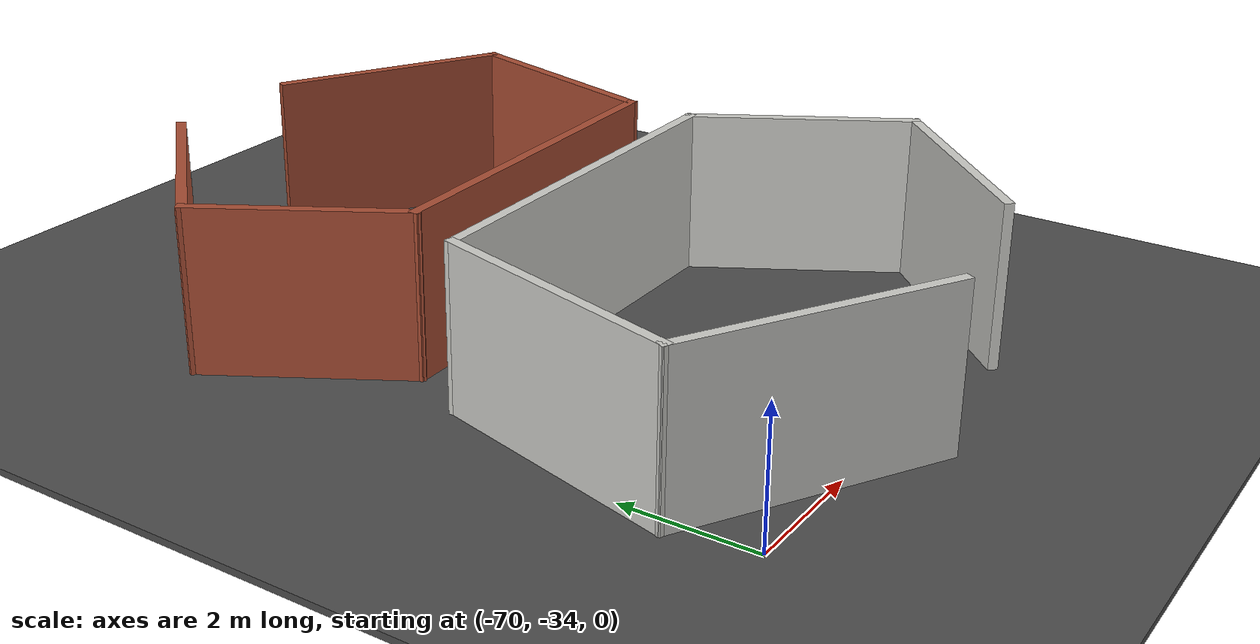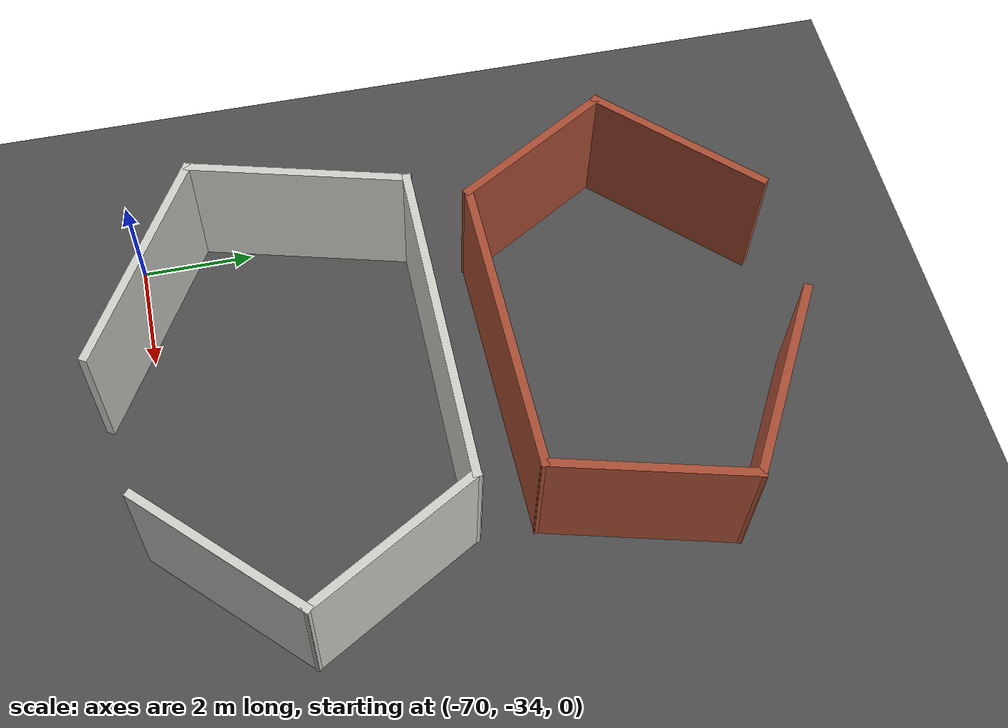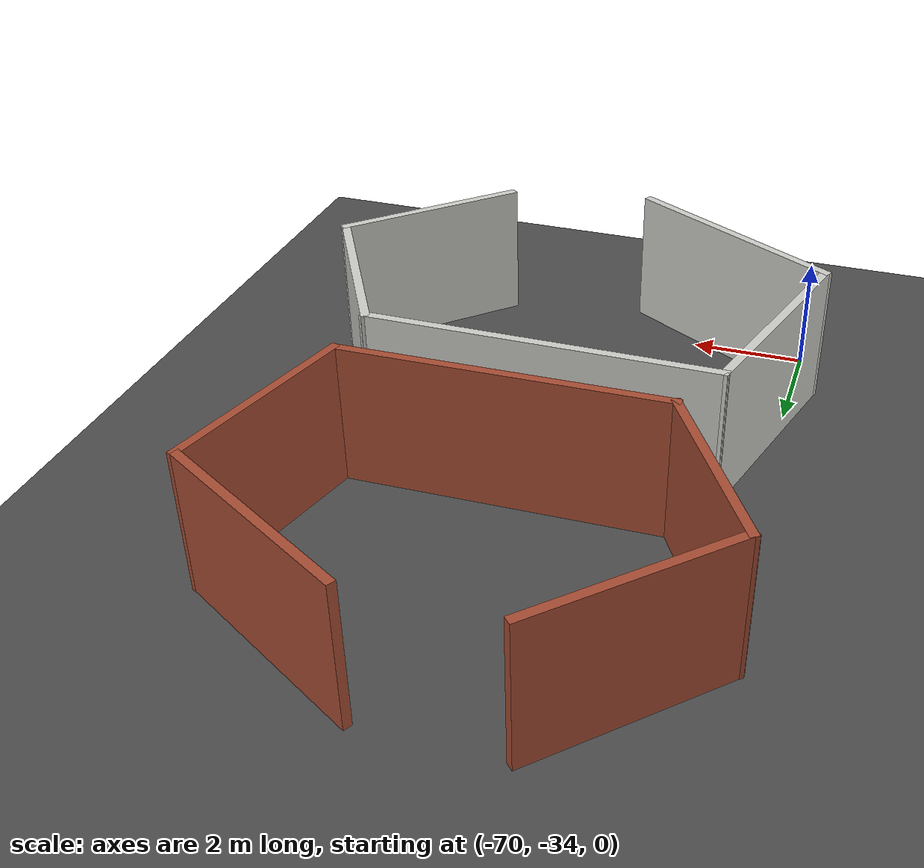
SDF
<sdf version="1.6">
 <world name="default">
  <model name="ground_plane">
   <static>1</static>
   <link name="link">
    <collision name="collision">
     <geometry><plane><normal>0 0 1</normal><size>200 200</size></plane></geometry>
     <surface><friction><ode><mu>100</mu><mu2>50</mu2></ode></friction></surface>
    </collision>
    <visual name="visual">
     <cast_shadows>0</cast_shadows>
     <geometry><plane><normal>0 0 1</normal><size>200 200</size></plane></geometry>
     <material>
      <script><uri>file://media/materials/scripts/gazebo.material</uri><name>Gazebo/Grey</name></script>
     </material>
    </visual>
   </link>
  </model>
  <model name="asphalt_plane">
   <static>1</static>
   <link name="link">
    <collision name="collision"><geometry><box><size>200 200 0.1</size></box></geometry></collision>
    <visual name="visual">
     <cast_shadows>0</cast_shadows>
     <geometry><box><size>200 200 0.1</size></box></geometry>
     <material>
      <script>
       <uri>model://asphalt_plane/materials/scripts</uri>
       <uri>model://asphalt_plane/materials/textures</uri>
       <name>vrc/asphalt</name>
      </script>
     </material>
    </visual>
   </link>
  </model>
  <model name="concrete_room">
   <pose>-66.0722 -31.9823 0 0 -0 0</pose>
   <link name="Wall_54">
    <collision name="Wall_54_Collision">
     <geometry><box><size>4.25 0.15 2.5</size></box></geometry>
     <pose>0 0 1.25 0 -0 0</pose>
    </collision>
    <visual name="Wall_54_Visual">
     <pose>0 0 1.25 0 -0 0</pose>
     <geometry><box><size>4.25 0.15 2.5</size></box></geometry>
     <material>
      <script><uri>file://media/materials/scripts/gazebo.material</uri><name>Gazebo/CeilingTiled</name></script>
      <ambient>1 1 1 1</ambient>
     </material>
     <meta><layer>0</layer></meta>
    </visual>
    <pose>-2.48718 -1.85941 0 0 -0 2.61799</pose>
   </link>
   <link name="Wall_55">
    <collision name="Wall_55_Collision">
     <geometry><box><size>4 0.15 2.5</size></box></geometry>
     <pose>0 0 1.25 0 -0 0</pose>
    </collision>
    <visual name="Wall_55_Visual">
     <pose>0 0 1.25 0 -0 0</pose>
     <geometry><box><size>4 0.15 2.5</size></box></geometry>
     <material>
      <script><uri>file://media/materials/scripts/gazebo.material</uri><name>Gazebo/CeilingTiled</name></script>
      <ambient>1 1 1 1</ambient>
     </material>
     <meta><layer>0</layer></meta>
    </visual>
    <pose>-3.76431 1.025 0 0 -0 1.309</pose>
   </link>
   <link name="Wall_56">
    <collision name="Wall_56_Collision">
     <geometry><box><size>6 0.15 2.5</size></box></geometry>
     <pose>0 0 1.25 0 -0 0</pose>
    </collision>
    <visual name="Wall_56_Visual">
     <pose>0 0 1.25 0 -0 0</pose>
     <geometry><box><size>6 0.15 2.5</size></box></geometry>
     <material>
      <script><uri>file://media/materials/scripts/gazebo.material</uri><name>Gazebo/CeilingTiled</name></script>
      <ambient>1 1 1 1</ambient>
     </material>
     <meta><layer>0</layer></meta>
    </visual>
    <pose>-0.34108 2.88441 0 0 -0 0</pose>
   </link>
   <link name="Wall_57">
    <collision name="Wall_57_Collision">
     <geometry><box><size>3.5 0.15 2.5</size></box></geometry>
     <pose>0 0 1.25 0 -0 0</pose>
    </collision>
    <visual name="Wall_57_Visual">
     <pose>0 0 1.25 0 -0 0</pose>
     <geometry><box><size>3.5 0.15 2.5</size></box></geometry>
     <material>
      <script><uri>file://media/materials/scripts/gazebo.material</uri><name>Gazebo/CeilingTiled</name></script>
      <ambient>1 1 1 1</ambient>
     </material>
     <meta><layer>0</layer></meta>
    </visual>
    <pose>3.42142 1.43382 0 0 0 -1.0472</pose>
   </link>
   <link name="Wall_58">
    <collision name="Wall_58_Collision">
     <geometry><box><size>3.5 0.15 2.5</size></box></geometry>
     <pose>0 0 1.25 0 -0 0</pose>
    </collision>
    <visual name="Wall_58_Visual">
     <pose>0 0 1.25 0 -0 0</pose>
     <geometry><box><size>3.5 0.15 2.5</size></box></geometry>
     <material>
      <script><uri>file://media/materials/scripts/gazebo.material</uri><name>Gazebo/CeilingTiled</name></script>
      <ambient>1 1 1 1</ambient>
     </material>
     <meta><layer>0</layer></meta>
    </visual>
    <pose>3.07452 -1.20118 0 0 0 -2.35619</pose>
   </link>
   <static>1</static>
  </model>
  <model name="brick_room1_clone_clone_clone">
   <pose>-66.5062 -25.5477 0 0 0 -3.13253</pose>
   <link name="Wall_11">
    <collision name="Wall_11_Collision">
     <geometry><box><size>3.25 0.15 2.5</size></box></geometry>
     <pose>0 0 1.25 0 -0 0</pose>
    </collision>
    <visual name="Wall_11_Visual">
     <pose>0 0 1.25 0 -0 0</pose>
     <geometry><box><size>3.25 0.15 2.5</size></box></geometry>
     <material>
      <script><uri>file://media/materials/scripts/gazebo.material</uri><name>Gazebo/Bricks</name></script>
      <ambient>1 1 1 1</ambient>
     </material>
    </visual>
    <pose>3.12132 1.19483 0 0 0 -1.0472</pose>
   </link>
   <link name="Wall_12">
    <collision name="Wall_12_Collision">
     <geometry><box><size>3.5 0.15 2.5</size></box></geometry>
     <pose>0 0 1.25 0 -0 0</pose>
    </collision>
    <visual name="Wall_12_Visual">
     <pose>0 0 1.25 0 -0 0</pose>
     <geometry><box><size>3.5 0.15 2.5</size></box></geometry>
     <material>
      <script><uri>file://media/materials/scripts/gazebo.material</uri><name>Gazebo/Bricks</name></script>
      <ambient>1 1 1 1</ambient>
     </material>
    </visual>
    <pose>2.71192 -1.33192 0 0 0 -2.35619</pose>
   </link>
   <link name="Wall_7">
    <collision name="Wall_7_Collision">
     <geometry><box><size>5.52935 0.15 2.5</size></box></geometry>
     <pose>0 0 1.25 0 -0 0</pose>
    </collision>
    <visual name="Wall_7_Visual">
     <pose>0 0 1.25 0 -0 0</pose>
     <geometry><box><size>5.52935 0.15 2.5</size></box></geometry>
     <material>
      <script><uri>file://media/materials/scripts/gazebo.material</uri><name>Gazebo/Bricks</name></script>
      <ambient>1 1 1 1</ambient>
     </material>
    </visual>
    <pose>-0.343285 2.51793 0 0 0 -3.13444</pose>
   </link>
   <link name="Wall_8">
    <collision name="Wall_8_Collision">
     <geometry><box><size>3.5 0.15 2.5</size></box></geometry>
     <pose>0 0 1.25 0 -0 0</pose>
    </collision>
    <visual name="Wall_8_Visual">
     <pose>0 0 1.25 0 -0 0</pose>
     <geometry><box><size>3.5 0.15 2.5</size></box></geometry>
     <material>
      <script><uri>file://media/materials/scripts/gazebo.material</uri><name>Gazebo/Bricks</name></script>
      <ambient>1 1 1 1</ambient>
     </material>
    </visual>
    <pose>-3.46641 0.880761 0 0 0 -1.8326</pose>
   </link>
   <link name="Wall_9">
    <collision name="Wall_9_Collision">
     <geometry><box><size>3.75 0.15 2.5</size></box></geometry>
     <pose>0 0 1.25 0 -0 0</pose>
    </collision>
    <visual name="Wall_9_Visual">
     <pose>0 0 1.25 0 -0 0</pose>
     <geometry><box><size>3.75 0.15 2.5</size></box></geometry>
     <material>
      <script><uri>file://media/materials/scripts/gazebo.material</uri><name>Gazebo/Bricks</name></script>
      <ambient>1 1 1 1</ambient>
     </material>
    </visual>
    <pose>-2.34109 -1.63716 0 0 0 -0.523599</pose>
   </link>
   <static>1</static>
  </model>
 </world>
</sdf>
